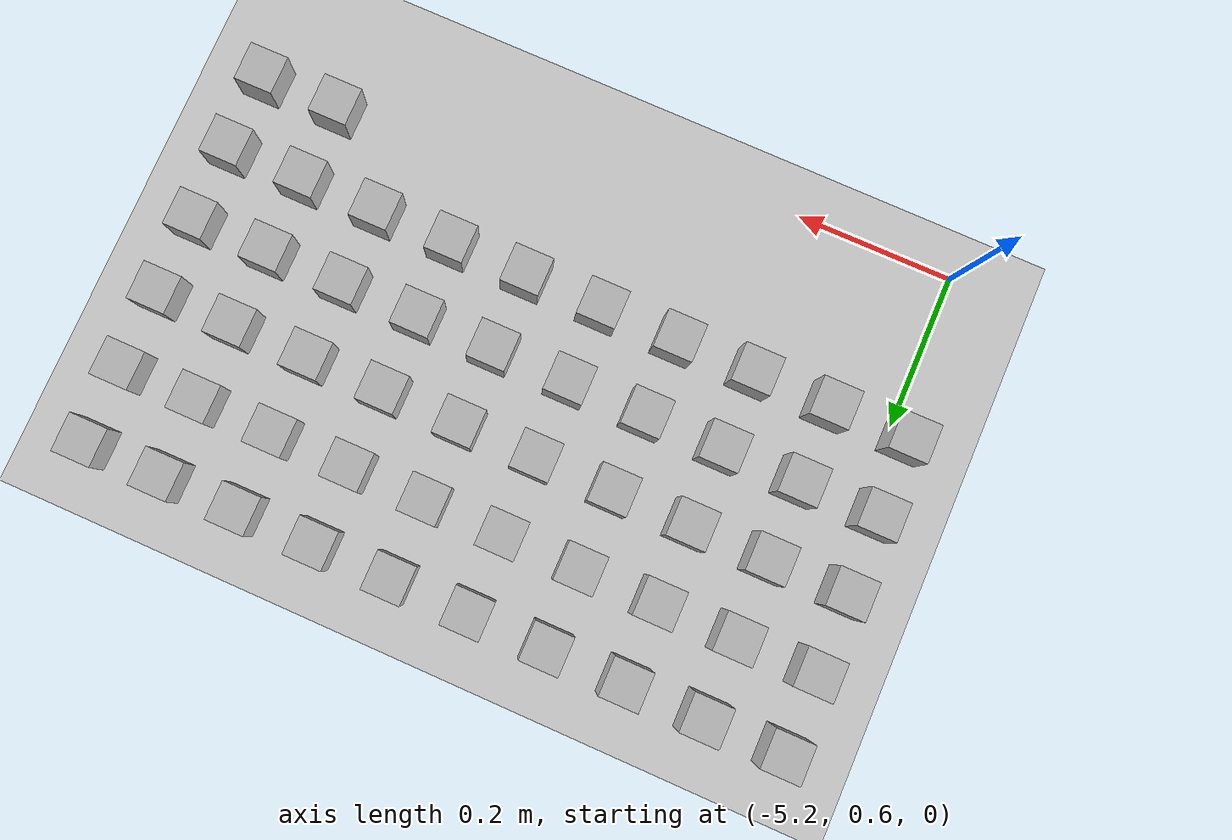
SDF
<sdf version="1.4">
 <world name="default">
  <model name="ground_plane">
   <static>1</static>
   <link name="link">
    <collision name="collision">
     <geometry><plane><normal>0 0 1</normal><size>100 100</size></plane></geometry>
     <surface><friction><ode><mu>100</mu><mu2>50</mu2></ode></friction></surface>
    </collision>
    <visual name="visual">
     <cast_shadows>0</cast_shadows>
     <geometry><plane><normal>0 0 1</normal><size>100 100</size></plane></geometry>
     <material>
      <script><uri>file://media/materials/scripts/gazebo.material</uri><name>Gazebo/Grey</name></script>
     </material>
    </visual>
    <velocity_decay><linear>0</linear><angular>0</angular></velocity_decay>
   </link>
  </model>
  <model name="at174">
   <static>0</static>
   <link name="link">
    <inertial>
     <mass>0.01</mass>
     <inertia><ixx>4e-05</ixx><ixy>0</ixy><ixz>0</ixz><iyy>4e-05</iyy><iyz>0</iyz><izz>4e-05</izz></inertia>
    </inertial>
    <visual name="visual">
     <geometry><box><size>0.05 0.05 0.05</size></box></geometry>
     <material>
      <script>
       <uri>model://at0/materials/scripts</uri>
       <uri>model://at0/materials/textures</uri>
       <name>at0/Diffuse</name>
      </script>
     </material>
    </visual>
    <collision name="collision">
     <geometry><box><size>0.05 0.05 0.05</size></box></geometry>
     <surface><friction><ode><mu>0.8</mu><mu2>0.7</mu2></ode></friction></surface>
    </collision>
    <velocity_decay><linear>0</linear><angular>0</angular></velocity_decay>
   </link>
   <pose>-4.41833 0.709652 0.025 0 -0 0</pose>
  </model>
  <model name="at175">
   <static>0</static>
   <link name="link">
    <inertial>
     <mass>0.01</mass>
     <inertia><ixx>4e-05</ixx><ixy>0</ixy><ixz>0</ixz><iyy>4e-05</iyy><iyz>0</iyz><izz>4e-05</izz></inertia>
    </inertial>
    <visual name="visual">
     <geometry><box><size>0.05 0.05 0.05</size></box></geometry>
     <material>
      <script>
       <uri>model://at0/materials/scripts</uri>
       <uri>model://at0/materials/textures</uri>
       <name>at0/Diffuse</name>
      </script>
     </material>
    </visual>
    <collision name="collision">
     <geometry><box><size>0.05 0.05 0.05</size></box></geometry>
     <surface><friction><ode><mu>0.8</mu><mu2>0.7</mu2></ode></friction></surface>
    </collision>
    <velocity_decay><linear>0</linear><angular>0</angular></velocity_decay>
   </link>
   <pose>-4.31833 0.709652 0.025 0 -0 0</pose>
  </model>
  <model name="at182">
   <static>0</static>
   <link name="link">
    <inertial>
     <mass>0.01</mass>
     <inertia><ixx>4e-05</ixx><ixy>0</ixy><ixz>0</ixz><iyy>4e-05</iyy><iyz>0</iyz><izz>4e-05</izz></inertia>
    </inertial>
    <visual name="visual">
     <geometry><box><size>0.05 0.05 0.05</size></box></geometry>
     <material>
      <script>
       <uri>model://at0/materials/scripts</uri>
       <uri>model://at0/materials/textures</uri>
       <name>at0/Diffuse</name>
      </script>
     </material>
    </visual>
    <collision name="collision">
     <geometry><box><size>0.05 0.05 0.05</size></box></geometry>
     <surface><friction><ode><mu>0.8</mu><mu2>0.7</mu2></ode></friction></surface>
    </collision>
    <velocity_decay><linear>0</linear><angular>0</angular></velocity_decay>
   </link>
   <pose>-5.21833 0.809652 0.025 0 -0 0</pose>
  </model>
  <model name="at183">
   <static>0</static>
   <link name="link">
    <inertial>
     <mass>0.01</mass>
     <inertia><ixx>4e-05</ixx><ixy>0</ixy><ixz>0</ixz><iyy>4e-05</iyy><iyz>0</iyz><izz>4e-05</izz></inertia>
    </inertial>
    <visual name="visual">
     <geometry><box><size>0.05 0.05 0.05</size></box></geometry>
     <material>
      <script>
       <uri>model://at0/materials/scripts</uri>
       <uri>model://at0/materials/textures</uri>
       <name>at0/Diffuse</name>
      </script>
     </material>
    </visual>
    <collision name="collision">
     <geometry><box><size>0.05 0.05 0.05</size></box></geometry>
     <surface><friction><ode><mu>0.8</mu><mu2>0.7</mu2></ode></friction></surface>
    </collision>
    <velocity_decay><linear>0</linear><angular>0</angular></velocity_decay>
   </link>
   <pose>-5.11833 0.809652 0.025 0 -0 0</pose>
  </model>
  <model name="at184">
   <static>0</static>
   <link name="link">
    <inertial>
     <mass>0.01</mass>
     <inertia><ixx>4e-05</ixx><ixy>0</ixy><ixz>0</ixz><iyy>4e-05</iyy><iyz>0</iyz><izz>4e-05</izz></inertia>
    </inertial>
    <visual name="visual">
     <geometry><box><size>0.05 0.05 0.05</size></box></geometry>
     <material>
      <script>
       <uri>model://at0/materials/scripts</uri>
       <uri>model://at0/materials/textures</uri>
       <name>at0/Diffuse</name>
      </script>
     </material>
    </visual>
    <collision name="collision">
     <geometry><box><size>0.05 0.05 0.05</size></box></geometry>
     <surface><friction><ode><mu>0.8</mu><mu2>0.7</mu2></ode></friction></surface>
    </collision>
    <velocity_decay><linear>0</linear><angular>0</angular></velocity_decay>
   </link>
   <pose>-5.01833 0.809652 0.025 0 -0 0</pose>
  </model>
  <model name="at185">
   <static>0</static>
   <link name="link">
    <inertial>
     <mass>0.01</mass>
     <inertia><ixx>4e-05</ixx><ixy>0</ixy><ixz>0</ixz><iyy>4e-05</iyy><iyz>0</iyz><izz>4e-05</izz></inertia>
    </inertial>
    <visual name="visual">
     <geometry><box><size>0.05 0.05 0.05</size></box></geometry>
     <material>
      <script>
       <uri>model://at0/materials/scripts</uri>
       <uri>model://at0/materials/textures</uri>
       <name>at0/Diffuse</name>
      </script>
     </material>
    </visual>
    <collision name="collision">
     <geometry><box><size>0.05 0.05 0.05</size></box></geometry>
     <surface><friction><ode><mu>0.8</mu><mu2>0.7</mu2></ode></friction></surface>
    </collision>
    <velocity_decay><linear>0</linear><angular>0</angular></velocity_decay>
   </link>
   <pose>-4.91833 0.809652 0.025 0 -0 0</pose>
  </model>
  <model name="at186">
   <static>0</static>
   <link name="link">
    <inertial>
     <mass>0.01</mass>
     <inertia><ixx>4e-05</ixx><ixy>0</ixy><ixz>0</ixz><iyy>4e-05</iyy><iyz>0</iyz><izz>4e-05</izz></inertia>
    </inertial>
    <visual name="visual">
     <geometry><box><size>0.05 0.05 0.05</size></box></geometry>
     <material>
      <script>
       <uri>model://at0/materials/scripts</uri>
       <uri>model://at0/materials/textures</uri>
       <name>at0/Diffuse</name>
      </script>
     </material>
    </visual>
    <collision name="collision">
     <geometry><box><size>0.05 0.05 0.05</size></box></geometry>
     <surface><friction><ode><mu>0.8</mu><mu2>0.7</mu2></ode></friction></surface>
    </collision>
    <velocity_decay><linear>0</linear><angular>0</angular></velocity_decay>
   </link>
   <pose>-4.81833 0.809652 0.025 0 -0 0</pose>
  </model>
  <model name="at187">
   <static>0</static>
   <link name="link">
    <inertial>
     <mass>0.01</mass>
     <inertia><ixx>4e-05</ixx><ixy>0</ixy><ixz>0</ixz><iyy>4e-05</iyy><iyz>0</iyz><izz>4e-05</izz></inertia>
    </inertial>
    <visual name="visual">
     <geometry><box><size>0.05 0.05 0.05</size></box></geometry>
     <material>
      <script>
       <uri>model://at0/materials/scripts</uri>
       <uri>model://at0/materials/textures</uri>
       <name>at0/Diffuse</name>
      </script>
     </material>
    </visual>
    <collision name="collision">
     <geometry><box><size>0.05 0.05 0.05</size></box></geometry>
     <surface><friction><ode><mu>0.8</mu><mu2>0.7</mu2></ode></friction></surface>
    </collision>
    <velocity_decay><linear>0</linear><angular>0</angular></velocity_decay>
   </link>
   <pose>-4.71833 0.809652 0.025 0 -0 0</pose>
  </model>
  <model name="at188">
   <static>0</static>
   <link name="link">
    <inertial>
     <mass>0.01</mass>
     <inertia><ixx>4e-05</ixx><ixy>0</ixy><ixz>0</ixz><iyy>4e-05</iyy><iyz>0</iyz><izz>4e-05</izz></inertia>
    </inertial>
    <visual name="visual">
     <geometry><box><size>0.05 0.05 0.05</size></box></geometry>
     <material>
      <script>
       <uri>model://at0/materials/scripts</uri>
       <uri>model://at0/materials/textures</uri>
       <name>at0/Diffuse</name>
      </script>
     </material>
    </visual>
    <collision name="collision">
     <geometry><box><size>0.05 0.05 0.05</size></box></geometry>
     <surface><friction><ode><mu>0.8</mu><mu2>0.7</mu2></ode></friction></surface>
    </collision>
    <velocity_decay><linear>0</linear><angular>0</angular></velocity_decay>
   </link>
   <pose>-4.61833 0.809652 0.025 0 -0 0</pose>
  </model>
  <model name="at189">
   <static>0</static>
   <link name="link">
    <inertial>
     <mass>0.01</mass>
     <inertia><ixx>4e-05</ixx><ixy>0</ixy><ixz>0</ixz><iyy>4e-05</iyy><iyz>0</iyz><izz>4e-05</izz></inertia>
    </inertial>
    <visual name="visual">
     <geometry><box><size>0.05 0.05 0.05</size></box></geometry>
     <material>
      <script>
       <uri>model://at0/materials/scripts</uri>
       <uri>model://at0/materials/textures</uri>
       <name>at0/Diffuse</name>
      </script>
     </material>
    </visual>
    <collision name="collision">
     <geometry><box><size>0.05 0.05 0.05</size></box></geometry>
     <surface><friction><ode><mu>0.8</mu><mu2>0.7</mu2></ode></friction></surface>
    </collision>
    <velocity_decay><linear>0</linear><angular>0</angular></velocity_decay>
   </link>
   <pose>-4.51833 0.809652 0.025 0 -0 0</pose>
  </model>
  <model name="at190">
   <static>0</static>
   <link name="link">
    <inertial>
     <mass>0.01</mass>
     <inertia><ixx>4e-05</ixx><ixy>0</ixy><ixz>0</ixz><iyy>4e-05</iyy><iyz>0</iyz><izz>4e-05</izz></inertia>
    </inertial>
    <visual name="visual">
     <geometry><box><size>0.05 0.05 0.05</size></box></geometry>
     <material>
      <script>
       <uri>model://at0/materials/scripts</uri>
       <uri>model://at0/materials/textures</uri>
       <name>at0/Diffuse</name>
      </script>
     </material>
    </visual>
    <collision name="collision">
     <geometry><box><size>0.05 0.05 0.05</size></box></geometry>
     <surface><friction><ode><mu>0.8</mu><mu2>0.7</mu2></ode></friction></surface>
    </collision>
    <velocity_decay><linear>0</linear><angular>0</angular></velocity_decay>
   </link>
   <pose>-4.41833 0.809652 0.025 0 -0 0</pose>
  </model>
  <model name="at191">
   <static>0</static>
   <link name="link">
    <inertial>
     <mass>0.01</mass>
     <inertia><ixx>4e-05</ixx><ixy>0</ixy><ixz>0</ixz><iyy>4e-05</iyy><iyz>0</iyz><izz>4e-05</izz></inertia>
    </inertial>
    <visual name="visual">
     <geometry><box><size>0.05 0.05 0.05</size></box></geometry>
     <material>
      <script>
       <uri>model://at0/materials/scripts</uri>
       <uri>model://at0/materials/textures</uri>
       <name>at0/Diffuse</name>
      </script>
     </material>
    </visual>
    <collision name="collision">
     <geometry><box><size>0.05 0.05 0.05</size></box></geometry>
     <surface><friction><ode><mu>0.8</mu><mu2>0.7</mu2></ode></friction></surface>
    </collision>
    <velocity_decay><linear>0</linear><angular>0</angular></velocity_decay>
   </link>
   <pose>-4.31833 0.809652 0.025 0 -0 0</pose>
  </model>
  <model name="at198">
   <static>0</static>
   <link name="link">
    <inertial>
     <mass>0.01</mass>
     <inertia><ixx>4e-05</ixx><ixy>0</ixy><ixz>0</ixz><iyy>4e-05</iyy><iyz>0</iyz><izz>4e-05</izz></inertia>
    </inertial>
    <visual name="visual">
     <geometry><box><size>0.05 0.05 0.05</size></box></geometry>
     <material>
      <script>
       <uri>model://at0/materials/scripts</uri>
       <uri>model://at0/materials/textures</uri>
       <name>at0/Diffuse</name>
      </script>
     </material>
    </visual>
    <collision name="collision">
     <geometry><box><size>0.05 0.05 0.05</size></box></geometry>
     <surface><friction><ode><mu>0.8</mu><mu2>0.7</mu2></ode></friction></surface>
    </collision>
    <velocity_decay><linear>0</linear><angular>0</angular></velocity_decay>
   </link>
   <pose>-5.21833 0.909652 0.025 0 -0 0</pose>
  </model>
  <model name="at199">
   <static>0</static>
   <link name="link">
    <inertial>
     <mass>0.01</mass>
     <inertia><ixx>4e-05</ixx><ixy>0</ixy><ixz>0</ixz><iyy>4e-05</iyy><iyz>0</iyz><izz>4e-05</izz></inertia>
    </inertial>
    <visual name="visual">
     <geometry><box><size>0.05 0.05 0.05</size></box></geometry>
     <material>
      <script>
       <uri>model://at0/materials/scripts</uri>
       <uri>model://at0/materials/textures</uri>
       <name>at0/Diffuse</name>
      </script>
     </material>
    </visual>
    <collision name="collision">
     <geometry><box><size>0.05 0.05 0.05</size></box></geometry>
     <surface><friction><ode><mu>0.8</mu><mu2>0.7</mu2></ode></friction></surface>
    </collision>
    <velocity_decay><linear>0</linear><angular>0</angular></velocity_decay>
   </link>
   <pose>-5.11833 0.909652 0.025 0 -0 0</pose>
  </model>
  <model name="at200">
   <static>0</static>
   <link name="link">
    <inertial>
     <mass>0.01</mass>
     <inertia><ixx>4e-05</ixx><ixy>0</ixy><ixz>0</ixz><iyy>4e-05</iyy><iyz>0</iyz><izz>4e-05</izz></inertia>
    </inertial>
    <visual name="visual">
     <geometry><box><size>0.05 0.05 0.05</size></box></geometry>
     <material>
      <script>
       <uri>model://at0/materials/scripts</uri>
       <uri>model://at0/materials/textures</uri>
       <name>at0/Diffuse</name>
      </script>
     </material>
    </visual>
    <collision name="collision">
     <geometry><box><size>0.05 0.05 0.05</size></box></geometry>
     <surface><friction><ode><mu>0.8</mu><mu2>0.7</mu2></ode></friction></surface>
    </collision>
    <velocity_decay><linear>0</linear><angular>0</angular></velocity_decay>
   </link>
   <pose>-5.01833 0.909652 0.025 0 -0 0</pose>
  </model>
  <model name="at201">
   <static>0</static>
   <link name="link">
    <inertial>
     <mass>0.01</mass>
     <inertia><ixx>4e-05</ixx><ixy>0</ixy><ixz>0</ixz><iyy>4e-05</iyy><iyz>0</iyz><izz>4e-05</izz></inertia>
    </inertial>
    <visual name="visual">
     <geometry><box><size>0.05 0.05 0.05</size></box></geometry>
     <material>
      <script>
       <uri>model://at0/materials/scripts</uri>
       <uri>model://at0/materials/textures</uri>
       <name>at0/Diffuse</name>
      </script>
     </material>
    </visual>
    <collision name="collision">
     <geometry><box><size>0.05 0.05 0.05</size></box></geometry>
     <surface><friction><ode><mu>0.8</mu><mu2>0.7</mu2></ode></friction></surface>
    </collision>
    <velocity_decay><linear>0</linear><angular>0</angular></velocity_decay>
   </link>
   <pose>-4.91833 0.909652 0.025 0 -0 0</pose>
  </model>
  <model name="at202">
   <static>0</static>
   <link name="link">
    <inertial>
     <mass>0.01</mass>
     <inertia><ixx>4e-05</ixx><ixy>0</ixy><ixz>0</ixz><iyy>4e-05</iyy><iyz>0</iyz><izz>4e-05</izz></inertia>
    </inertial>
    <visual name="visual">
     <geometry><box><size>0.05 0.05 0.05</size></box></geometry>
     <material>
      <script>
       <uri>model://at0/materials/scripts</uri>
       <uri>model://at0/materials/textures</uri>
       <name>at0/Diffuse</name>
      </script>
     </material>
    </visual>
    <collision name="collision">
     <geometry><box><size>0.05 0.05 0.05</size></box></geometry>
     <surface><friction><ode><mu>0.8</mu><mu2>0.7</mu2></ode></friction></surface>
    </collision>
    <velocity_decay><linear>0</linear><angular>0</angular></velocity_decay>
   </link>
   <pose>-4.81833 0.909652 0.025 0 -0 0</pose>
  </model>
  <model name="at203">
   <static>0</static>
   <link name="link">
    <inertial>
     <mass>0.01</mass>
     <inertia><ixx>4e-05</ixx><ixy>0</ixy><ixz>0</ixz><iyy>4e-05</iyy><iyz>0</iyz><izz>4e-05</izz></inertia>
    </inertial>
    <visual name="visual">
     <geometry><box><size>0.05 0.05 0.05</size></box></geometry>
     <material>
      <script>
       <uri>model://at0/materials/scripts</uri>
       <uri>model://at0/materials/textures</uri>
       <name>at0/Diffuse</name>
      </script>
     </material>
    </visual>
    <collision name="collision">
     <geometry><box><size>0.05 0.05 0.05</size></box></geometry>
     <surface><friction><ode><mu>0.8</mu><mu2>0.7</mu2></ode></friction></surface>
    </collision>
    <velocity_decay><linear>0</linear><angular>0</angular></velocity_decay>
   </link>
   <pose>-4.71833 0.909652 0.025 0 -0 0</pose>
  </model>
  <model name="at204">
   <static>0</static>
   <link name="link">
    <inertial>
     <mass>0.01</mass>
     <inertia><ixx>4e-05</ixx><ixy>0</ixy><ixz>0</ixz><iyy>4e-05</iyy><iyz>0</iyz><izz>4e-05</izz></inertia>
    </inertial>
    <visual name="visual">
     <geometry><box><size>0.05 0.05 0.05</size></box></geometry>
     <material>
      <script>
       <uri>model://at0/materials/scripts</uri>
       <uri>model://at0/materials/textures</uri>
       <name>at0/Diffuse</name>
      </script>
     </material>
    </visual>
    <collision name="collision">
     <geometry><box><size>0.05 0.05 0.05</size></box></geometry>
     <surface><friction><ode><mu>0.8</mu><mu2>0.7</mu2></ode></friction></surface>
    </collision>
    <velocity_decay><linear>0</linear><angular>0</angular></velocity_decay>
   </link>
   <pose>-4.61833 0.909652 0.025 0 -0 0</pose>
  </model>
  <model name="at205">
   <static>0</static>
   <link name="link">
    <inertial>
     <mass>0.01</mass>
     <inertia><ixx>4e-05</ixx><ixy>0</ixy><ixz>0</ixz><iyy>4e-05</iyy><iyz>0</iyz><izz>4e-05</izz></inertia>
    </inertial>
    <visual name="visual">
     <geometry><box><size>0.05 0.05 0.05</size></box></geometry>
     <material>
      <script>
       <uri>model://at0/materials/scripts</uri>
       <uri>model://at0/materials/textures</uri>
       <name>at0/Diffuse</name>
      </script>
     </material>
    </visual>
    <collision name="collision">
     <geometry><box><size>0.05 0.05 0.05</size></box></geometry>
     <surface><friction><ode><mu>0.8</mu><mu2>0.7</mu2></ode></friction></surface>
    </collision>
    <velocity_decay><linear>0</linear><angular>0</angular></velocity_decay>
   </link>
   <pose>-4.51833 0.909652 0.025 0 -0 0</pose>
  </model>
  <model name="at206">
   <static>0</static>
   <link name="link">
    <inertial>
     <mass>0.01</mass>
     <inertia><ixx>4e-05</ixx><ixy>0</ixy><ixz>0</ixz><iyy>4e-05</iyy><iyz>0</iyz><izz>4e-05</izz></inertia>
    </inertial>
    <visual name="visual">
     <geometry><box><size>0.05 0.05 0.05</size></box></geometry>
     <material>
      <script>
       <uri>model://at0/materials/scripts</uri>
       <uri>model://at0/materials/textures</uri>
       <name>at0/Diffuse</name>
      </script>
     </material>
    </visual>
    <collision name="collision">
     <geometry><box><size>0.05 0.05 0.05</size></box></geometry>
     <surface><friction><ode><mu>0.8</mu><mu2>0.7</mu2></ode></friction></surface>
    </collision>
    <velocity_decay><linear>0</linear><angular>0</angular></velocity_decay>
   </link>
   <pose>-4.41833 0.909652 0.025 0 -0 0</pose>
  </model>
  <model name="at207">
   <static>0</static>
   <link name="link">
    <inertial>
     <mass>0.01</mass>
     <inertia><ixx>4e-05</ixx><ixy>0</ixy><ixz>0</ixz><iyy>4e-05</iyy><iyz>0</iyz><izz>4e-05</izz></inertia>
    </inertial>
    <visual name="visual">
     <geometry><box><size>0.05 0.05 0.05</size></box></geometry>
     <material>
      <script>
       <uri>model://at0/materials/scripts</uri>
       <uri>model://at0/materials/textures</uri>
       <name>at0/Diffuse</name>
      </script>
     </material>
    </visual>
    <collision name="collision">
     <geometry><box><size>0.05 0.05 0.05</size></box></geometry>
     <surface><friction><ode><mu>0.8</mu><mu2>0.7</mu2></ode></friction></surface>
    </collision>
    <velocity_decay><linear>0</linear><angular>0</angular></velocity_decay>
   </link>
   <pose>-4.31833 0.909652 0.025 0 -0 0</pose>
  </model>
  <model name="at214">
   <static>0</static>
   <link name="link">
    <inertial>
     <mass>0.01</mass>
     <inertia><ixx>4e-05</ixx><ixy>0</ixy><ixz>0</ixz><iyy>4e-05</iyy><iyz>0</iyz><izz>4e-05</izz></inertia>
    </inertial>
    <visual name="visual">
     <geometry><box><size>0.05 0.05 0.05</size></box></geometry>
     <material>
      <script>
       <uri>model://at0/materials/scripts</uri>
       <uri>model://at0/materials/textures</uri>
       <name>at0/Diffuse</name>
      </script>
     </material>
    </visual>
    <collision name="collision">
     <geometry><box><size>0.05 0.05 0.05</size></box></geometry>
     <surface><friction><ode><mu>0.8</mu><mu2>0.7</mu2></ode></friction></surface>
    </collision>
    <velocity_decay><linear>0</linear><angular>0</angular></velocity_decay>
   </link>
   <pose>-5.21833 1.00965 0.025 0 -0 0</pose>
  </model>
  <model name="at215">
   <static>0</static>
   <link name="link">
    <inertial>
     <mass>0.01</mass>
     <inertia><ixx>4e-05</ixx><ixy>0</ixy><ixz>0</ixz><iyy>4e-05</iyy><iyz>0</iyz><izz>4e-05</izz></inertia>
    </inertial>
    <visual name="visual">
     <geometry><box><size>0.05 0.05 0.05</size></box></geometry>
     <material>
      <script>
       <uri>model://at0/materials/scripts</uri>
       <uri>model://at0/materials/textures</uri>
       <name>at0/Diffuse</name>
      </script>
     </material>
    </visual>
    <collision name="collision">
     <geometry><box><size>0.05 0.05 0.05</size></box></geometry>
     <surface><friction><ode><mu>0.8</mu><mu2>0.7</mu2></ode></friction></surface>
    </collision>
    <velocity_decay><linear>0</linear><angular>0</angular></velocity_decay>
   </link>
   <pose>-5.11833 1.00965 0.025 0 -0 0</pose>
  </model>
  <model name="at216">
   <static>0</static>
   <link name="link">
    <inertial>
     <mass>0.01</mass>
     <inertia><ixx>4e-05</ixx><ixy>0</ixy><ixz>0</ixz><iyy>4e-05</iyy><iyz>0</iyz><izz>4e-05</izz></inertia>
    </inertial>
    <visual name="visual">
     <geometry><box><size>0.05 0.05 0.05</size></box></geometry>
     <material>
      <script>
       <uri>model://at0/materials/scripts</uri>
       <uri>model://at0/materials/textures</uri>
       <name>at0/Diffuse</name>
      </script>
     </material>
    </visual>
    <collision name="collision">
     <geometry><box><size>0.05 0.05 0.05</size></box></geometry>
     <surface><friction><ode><mu>0.8</mu><mu2>0.7</mu2></ode></friction></surface>
    </collision>
    <velocity_decay><linear>0</linear><angular>0</angular></velocity_decay>
   </link>
   <pose>-5.01833 1.00965 0.025 0 -0 0</pose>
  </model>
  <model name="at217">
   <static>0</static>
   <link name="link">
    <inertial>
     <mass>0.01</mass>
     <inertia><ixx>4e-05</ixx><ixy>0</ixy><ixz>0</ixz><iyy>4e-05</iyy><iyz>0</iyz><izz>4e-05</izz></inertia>
    </inertial>
    <visual name="visual">
     <geometry><box><size>0.05 0.05 0.05</size></box></geometry>
     <material>
      <script>
       <uri>model://at0/materials/scripts</uri>
       <uri>model://at0/materials/textures</uri>
       <name>at0/Diffuse</name>
      </script>
     </material>
    </visual>
    <collision name="collision">
     <geometry><box><size>0.05 0.05 0.05</size></box></geometry>
     <surface><friction><ode><mu>0.8</mu><mu2>0.7</mu2></ode></friction></surface>
    </collision>
    <velocity_decay><linear>0</linear><angular>0</angular></velocity_decay>
   </link>
   <pose>-4.91833 1.00965 0.025 0 -0 0</pose>
  </model>
  <model name="at218">
   <static>0</static>
   <link name="link">
    <inertial>
     <mass>0.01</mass>
     <inertia><ixx>4e-05</ixx><ixy>0</ixy><ixz>0</ixz><iyy>4e-05</iyy><iyz>0</iyz><izz>4e-05</izz></inertia>
    </inertial>
    <visual name="visual">
     <geometry><box><size>0.05 0.05 0.05</size></box></geometry>
     <material>
      <script>
       <uri>model://at0/materials/scripts</uri>
       <uri>model://at0/materials/textures</uri>
       <name>at0/Diffuse</name>
      </script>
     </material>
    </visual>
    <collision name="collision">
     <geometry><box><size>0.05 0.05 0.05</size></box></geometry>
     <surface><friction><ode><mu>0.8</mu><mu2>0.7</mu2></ode></friction></surface>
    </collision>
    <velocity_decay><linear>0</linear><angular>0</angular></velocity_decay>
   </link>
   <pose>-4.81833 1.00965 0.025 0 -0 0</pose>
  </model>
  <model name="at219">
   <static>0</static>
   <link name="link">
    <inertial>
     <mass>0.01</mass>
     <inertia><ixx>4e-05</ixx><ixy>0</ixy><ixz>0</ixz><iyy>4e-05</iyy><iyz>0</iyz><izz>4e-05</izz></inertia>
    </inertial>
    <visual name="visual">
     <geometry><box><size>0.05 0.05 0.05</size></box></geometry>
     <material>
      <script>
       <uri>model://at0/materials/scripts</uri>
       <uri>model://at0/materials/textures</uri>
       <name>at0/Diffuse</name>
      </script>
     </material>
    </visual>
    <collision name="collision">
     <geometry><box><size>0.05 0.05 0.05</size></box></geometry>
     <surface><friction><ode><mu>0.8</mu><mu2>0.7</mu2></ode></friction></surface>
    </collision>
    <velocity_decay><linear>0</linear><angular>0</angular></velocity_decay>
   </link>
   <pose>-4.71833 1.00965 0.025 0 -0 0</pose>
  </model>
  <model name="at220">
   <static>0</static>
   <link name="link">
    <inertial>
     <mass>0.01</mass>
     <inertia><ixx>4e-05</ixx><ixy>0</ixy><ixz>0</ixz><iyy>4e-05</iyy><iyz>0</iyz><izz>4e-05</izz></inertia>
    </inertial>
    <visual name="visual">
     <geometry><box><size>0.05 0.05 0.05</size></box></geometry>
     <material>
      <script>
       <uri>model://at0/materials/scripts</uri>
       <uri>model://at0/materials/textures</uri>
       <name>at0/Diffuse</name>
      </script>
     </material>
    </visual>
    <collision name="collision">
     <geometry><box><size>0.05 0.05 0.05</size></box></geometry>
     <surface><friction><ode><mu>0.8</mu><mu2>0.7</mu2></ode></friction></surface>
    </collision>
    <velocity_decay><linear>0</linear><angular>0</angular></velocity_decay>
   </link>
   <pose>-4.61833 1.00965 0.025 0 -0 0</pose>
  </model>
  <model name="at221">
   <static>0</static>
   <link name="link">
    <inertial>
     <mass>0.01</mass>
     <inertia><ixx>4e-05</ixx><ixy>0</ixy><ixz>0</ixz><iyy>4e-05</iyy><iyz>0</iyz><izz>4e-05</izz></inertia>
    </inertial>
    <visual name="visual">
     <geometry><box><size>0.05 0.05 0.05</size></box></geometry>
     <material>
      <script>
       <uri>model://at0/materials/scripts</uri>
       <uri>model://at0/materials/textures</uri>
       <name>at0/Diffuse</name>
      </script>
     </material>
    </visual>
    <collision name="collision">
     <geometry><box><size>0.05 0.05 0.05</size></box></geometry>
     <surface><friction><ode><mu>0.8</mu><mu2>0.7</mu2></ode></friction></surface>
    </collision>
    <velocity_decay><linear>0</linear><angular>0</angular></velocity_decay>
   </link>
   <pose>-4.51833 1.00965 0.025 0 -0 0</pose>
  </model>
  <model name="at222">
   <static>0</static>
   <link name="link">
    <inertial>
     <mass>0.01</mass>
     <inertia><ixx>4e-05</ixx><ixy>0</ixy><ixz>0</ixz><iyy>4e-05</iyy><iyz>0</iyz><izz>4e-05</izz></inertia>
    </inertial>
    <visual name="visual">
     <geometry><box><size>0.05 0.05 0.05</size></box></geometry>
     <material>
      <script>
       <uri>model://at0/materials/scripts</uri>
       <uri>model://at0/materials/textures</uri>
       <name>at0/Diffuse</name>
      </script>
     </material>
    </visual>
    <collision name="collision">
     <geometry><box><size>0.05 0.05 0.05</size></box></geometry>
     <surface><friction><ode><mu>0.8</mu><mu2>0.7</mu2></ode></friction></surface>
    </collision>
    <velocity_decay><linear>0</linear><angular>0</angular></velocity_decay>
   </link>
   <pose>-4.41833 1.00965 0.025 0 -0 0</pose>
  </model>
  <model name="at223">
   <static>0</static>
   <link name="link">
    <inertial>
     <mass>0.01</mass>
     <inertia><ixx>4e-05</ixx><ixy>0</ixy><ixz>0</ixz><iyy>4e-05</iyy><iyz>0</iyz><izz>4e-05</izz></inertia>
    </inertial>
    <visual name="visual">
     <geometry><box><size>0.05 0.05 0.05</size></box></geometry>
     <material>
      <script>
       <uri>model://at0/materials/scripts</uri>
       <uri>model://at0/materials/textures</uri>
       <name>at0/Diffuse</name>
      </script>
     </material>
    </visual>
    <collision name="collision">
     <geometry><box><size>0.05 0.05 0.05</size></box></geometry>
     <surface><friction><ode><mu>0.8</mu><mu2>0.7</mu2></ode></friction></surface>
    </collision>
    <velocity_decay><linear>0</linear><angular>0</angular></velocity_decay>
   </link>
   <pose>-4.31833 1.00965 0.025 0 -0 0</pose>
  </model>
  <model name="at230">
   <static>0</static>
   <link name="link">
    <inertial>
     <mass>0.01</mass>
     <inertia><ixx>4e-05</ixx><ixy>0</ixy><ixz>0</ixz><iyy>4e-05</iyy><iyz>0</iyz><izz>4e-05</izz></inertia>
    </inertial>
    <visual name="visual">
     <geometry><box><size>0.05 0.05 0.05</size></box></geometry>
     <material>
      <script>
       <uri>model://at0/materials/scripts</uri>
       <uri>model://at0/materials/textures</uri>
       <name>at0/Diffuse</name>
      </script>
     </material>
    </visual>
    <collision name="collision">
     <geometry><box><size>0.05 0.05 0.05</size></box></geometry>
     <surface><friction><ode><mu>0.8</mu><mu2>0.7</mu2></ode></friction></surface>
    </collision>
    <velocity_decay><linear>0</linear><angular>0</angular></velocity_decay>
   </link>
   <pose>-5.21833 1.10965 0.025 0 -0 0</pose>
  </model>
  <model name="at231">
   <static>0</static>
   <link name="link">
    <inertial>
     <mass>0.01</mass>
     <inertia><ixx>4e-05</ixx><ixy>0</ixy><ixz>0</ixz><iyy>4e-05</iyy><iyz>0</iyz><izz>4e-05</izz></inertia>
    </inertial>
    <visual name="visual">
     <geometry><box><size>0.05 0.05 0.05</size></box></geometry>
     <material>
      <script>
       <uri>model://at0/materials/scripts</uri>
       <uri>model://at0/materials/textures</uri>
       <name>at0/Diffuse</name>
      </script>
     </material>
    </visual>
    <collision name="collision">
     <geometry><box><size>0.05 0.05 0.05</size></box></geometry>
     <surface><friction><ode><mu>0.8</mu><mu2>0.7</mu2></ode></friction></surface>
    </collision>
    <velocity_decay><linear>0</linear><angular>0</angular></velocity_decay>
   </link>
   <pose>-5.11833 1.10965 0.025 0 -0 0</pose>
  </model>
  <model name="at232">
   <static>0</static>
   <link name="link">
    <inertial>
     <mass>0.01</mass>
     <inertia><ixx>4e-05</ixx><ixy>0</ixy><ixz>0</ixz><iyy>4e-05</iyy><iyz>0</iyz><izz>4e-05</izz></inertia>
    </inertial>
    <visual name="visual">
     <geometry><box><size>0.05 0.05 0.05</size></box></geometry>
     <material>
      <script>
       <uri>model://at0/materials/scripts</uri>
       <uri>model://at0/materials/textures</uri>
       <name>at0/Diffuse</name>
      </script>
     </material>
    </visual>
    <collision name="collision">
     <geometry><box><size>0.05 0.05 0.05</size></box></geometry>
     <surface><friction><ode><mu>0.8</mu><mu2>0.7</mu2></ode></friction></surface>
    </collision>
    <velocity_decay><linear>0</linear><angular>0</angular></velocity_decay>
   </link>
   <pose>-5.01833 1.10965 0.025 0 -0 0</pose>
  </model>
  <model name="at233">
   <static>0</static>
   <link name="link">
    <inertial>
     <mass>0.01</mass>
     <inertia><ixx>4e-05</ixx><ixy>0</ixy><ixz>0</ixz><iyy>4e-05</iyy><iyz>0</iyz><izz>4e-05</izz></inertia>
    </inertial>
    <visual name="visual">
     <geometry><box><size>0.05 0.05 0.05</size></box></geometry>
     <material>
      <script>
       <uri>model://at0/materials/scripts</uri>
       <uri>model://at0/materials/textures</uri>
       <name>at0/Diffuse</name>
      </script>
     </material>
    </visual>
    <collision name="collision">
     <geometry><box><size>0.05 0.05 0.05</size></box></geometry>
     <surface><friction><ode><mu>0.8</mu><mu2>0.7</mu2></ode></friction></surface>
    </collision>
    <velocity_decay><linear>0</linear><angular>0</angular></velocity_decay>
   </link>
   <pose>-4.91833 1.10965 0.025 0 -0 0</pose>
  </model>
  <model name="at234">
   <static>0</static>
   <link name="link">
    <inertial>
     <mass>0.01</mass>
     <inertia><ixx>4e-05</ixx><ixy>0</ixy><ixz>0</ixz><iyy>4e-05</iyy><iyz>0</iyz><izz>4e-05</izz></inertia>
    </inertial>
    <visual name="visual">
     <geometry><box><size>0.05 0.05 0.05</size></box></geometry>
     <material>
      <script>
       <uri>model://at0/materials/scripts</uri>
       <uri>model://at0/materials/textures</uri>
       <name>at0/Diffuse</name>
      </script>
     </material>
    </visual>
    <collision name="collision">
     <geometry><box><size>0.05 0.05 0.05</size></box></geometry>
     <surface><friction><ode><mu>0.8</mu><mu2>0.7</mu2></ode></friction></surface>
    </collision>
    <velocity_decay><linear>0</linear><angular>0</angular></velocity_decay>
   </link>
   <pose>-4.81833 1.10965 0.025 0 -0 0</pose>
  </model>
  <model name="at235">
   <static>0</static>
   <link name="link">
    <inertial>
     <mass>0.01</mass>
     <inertia><ixx>4e-05</ixx><ixy>0</ixy><ixz>0</ixz><iyy>4e-05</iyy><iyz>0</iyz><izz>4e-05</izz></inertia>
    </inertial>
    <visual name="visual">
     <geometry><box><size>0.05 0.05 0.05</size></box></geometry>
     <material>
      <script>
       <uri>model://at0/materials/scripts</uri>
       <uri>model://at0/materials/textures</uri>
       <name>at0/Diffuse</name>
      </script>
     </material>
    </visual>
    <collision name="collision">
     <geometry><box><size>0.05 0.05 0.05</size></box></geometry>
     <surface><friction><ode><mu>0.8</mu><mu2>0.7</mu2></ode></friction></surface>
    </collision>
    <velocity_decay><linear>0</linear><angular>0</angular></velocity_decay>
   </link>
   <pose>-4.71833 1.10965 0.025 0 -0 0</pose>
  </model>
  <model name="at236">
   <static>0</static>
   <link name="link">
    <inertial>
     <mass>0.01</mass>
     <inertia><ixx>4e-05</ixx><ixy>0</ixy><ixz>0</ixz><iyy>4e-05</iyy><iyz>0</iyz><izz>4e-05</izz></inertia>
    </inertial>
    <visual name="visual">
     <geometry><box><size>0.05 0.05 0.05</size></box></geometry>
     <material>
      <script>
       <uri>model://at0/materials/scripts</uri>
       <uri>model://at0/materials/textures</uri>
       <name>at0/Diffuse</name>
      </script>
     </material>
    </visual>
    <collision name="collision">
     <geometry><box><size>0.05 0.05 0.05</size></box></geometry>
     <surface><friction><ode><mu>0.8</mu><mu2>0.7</mu2></ode></friction></surface>
    </collision>
    <velocity_decay><linear>0</linear><angular>0</angular></velocity_decay>
   </link>
   <pose>-4.61833 1.10965 0.025 0 -0 0</pose>
  </model>
  <model name="at237">
   <static>0</static>
   <link name="link">
    <inertial>
     <mass>0.01</mass>
     <inertia><ixx>4e-05</ixx><ixy>0</ixy><ixz>0</ixz><iyy>4e-05</iyy><iyz>0</iyz><izz>4e-05</izz></inertia>
    </inertial>
    <visual name="visual">
     <geometry><box><size>0.05 0.05 0.05</size></box></geometry>
     <material>
      <script>
       <uri>model://at0/materials/scripts</uri>
       <uri>model://at0/materials/textures</uri>
       <name>at0/Diffuse</name>
      </script>
     </material>
    </visual>
    <collision name="collision">
     <geometry><box><size>0.05 0.05 0.05</size></box></geometry>
     <surface><friction><ode><mu>0.8</mu><mu2>0.7</mu2></ode></friction></surface>
    </collision>
    <velocity_decay><linear>0</linear><angular>0</angular></velocity_decay>
   </link>
   <pose>-4.51833 1.10965 0.025 0 -0 0</pose>
  </model>
  <model name="at238">
   <static>0</static>
   <link name="link">
    <inertial>
     <mass>0.01</mass>
     <inertia><ixx>4e-05</ixx><ixy>0</ixy><ixz>0</ixz><iyy>4e-05</iyy><iyz>0</iyz><izz>4e-05</izz></inertia>
    </inertial>
    <visual name="visual">
     <geometry><box><size>0.05 0.05 0.05</size></box></geometry>
     <material>
      <script>
       <uri>model://at0/materials/scripts</uri>
       <uri>model://at0/materials/textures</uri>
       <name>at0/Diffuse</name>
      </script>
     </material>
    </visual>
    <collision name="collision">
     <geometry><box><size>0.05 0.05 0.05</size></box></geometry>
     <surface><friction><ode><mu>0.8</mu><mu2>0.7</mu2></ode></friction></surface>
    </collision>
    <velocity_decay><linear>0</linear><angular>0</angular></velocity_decay>
   </link>
   <pose>-4.41833 1.10965 0.025 0 -0 0</pose>
  </model>
  <model name="at239">
   <static>0</static>
   <link name="link">
    <inertial>
     <mass>0.01</mass>
     <inertia><ixx>4e-05</ixx><ixy>0</ixy><ixz>0</ixz><iyy>4e-05</iyy><iyz>0</iyz><izz>4e-05</izz></inertia>
    </inertial>
    <visual name="visual">
     <geometry><box><size>0.05 0.05 0.05</size></box></geometry>
     <material>
      <script>
       <uri>model://at0/materials/scripts</uri>
       <uri>model://at0/materials/textures</uri>
       <name>at0/Diffuse</name>
      </script>
     </material>
    </visual>
    <collision name="collision">
     <geometry><box><size>0.05 0.05 0.05</size></box></geometry>
     <surface><friction><ode><mu>0.8</mu><mu2>0.7</mu2></ode></friction></surface>
    </collision>
    <velocity_decay><linear>0</linear><angular>0</angular></velocity_decay>
   </link>
   <pose>-4.31833 1.10965 0.025 0 -0 0</pose>
  </model>
  <model name="at246">
   <static>0</static>
   <link name="link">
    <inertial>
     <mass>0.01</mass>
     <inertia><ixx>4e-05</ixx><ixy>0</ixy><ixz>0</ixz><iyy>4e-05</iyy><iyz>0</iyz><izz>4e-05</izz></inertia>
    </inertial>
    <visual name="visual">
     <geometry><box><size>0.05 0.05 0.05</size></box></geometry>
     <material>
      <script>
       <uri>model://at0/materials/scripts</uri>
       <uri>model://at0/materials/textures</uri>
       <name>at0/Diffuse</name>
      </script>
     </material>
    </visual>
    <collision name="collision">
     <geometry><box><size>0.05 0.05 0.05</size></box></geometry>
     <surface><friction><ode><mu>0.8</mu><mu2>0.7</mu2></ode></friction></surface>
    </collision>
    <velocity_decay><linear>0</linear><angular>0</angular></velocity_decay>
   </link>
   <pose>-5.21833 1.20965 0.025 0 -0 0</pose>
  </model>
  <model name="at247">
   <static>0</static>
   <link name="link">
    <inertial>
     <mass>0.01</mass>
     <inertia><ixx>4e-05</ixx><ixy>0</ixy><ixz>0</ixz><iyy>4e-05</iyy><iyz>0</iyz><izz>4e-05</izz></inertia>
    </inertial>
    <visual name="visual">
     <geometry><box><size>0.05 0.05 0.05</size></box></geometry>
     <material>
      <script>
       <uri>model://at0/materials/scripts</uri>
       <uri>model://at0/materials/textures</uri>
       <name>at0/Diffuse</name>
      </script>
     </material>
    </visual>
    <collision name="collision">
     <geometry><box><size>0.05 0.05 0.05</size></box></geometry>
     <surface><friction><ode><mu>0.8</mu><mu2>0.7</mu2></ode></friction></surface>
    </collision>
    <velocity_decay><linear>0</linear><angular>0</angular></velocity_decay>
   </link>
   <pose>-5.11833 1.20965 0.025 0 -0 0</pose>
  </model>
  <model name="at248">
   <static>0</static>
   <link name="link">
    <inertial>
     <mass>0.01</mass>
     <inertia><ixx>4e-05</ixx><ixy>0</ixy><ixz>0</ixz><iyy>4e-05</iyy><iyz>0</iyz><izz>4e-05</izz></inertia>
    </inertial>
    <visual name="visual">
     <geometry><box><size>0.05 0.05 0.05</size></box></geometry>
     <material>
      <script>
       <uri>model://at0/materials/scripts</uri>
       <uri>model://at0/materials/textures</uri>
       <name>at0/Diffuse</name>
      </script>
     </material>
    </visual>
    <collision name="collision">
     <geometry><box><size>0.05 0.05 0.05</size></box></geometry>
     <surface><friction><ode><mu>0.8</mu><mu2>0.7</mu2></ode></friction></surface>
    </collision>
    <velocity_decay><linear>0</linear><angular>0</angular></velocity_decay>
   </link>
   <pose>-5.01833 1.20965 0.025 0 -0 0</pose>
  </model>
  <model name="at249">
   <static>0</static>
   <link name="link">
    <inertial>
     <mass>0.01</mass>
     <inertia><ixx>4e-05</ixx><ixy>0</ixy><ixz>0</ixz><iyy>4e-05</iyy><iyz>0</iyz><izz>4e-05</izz></inertia>
    </inertial>
    <visual name="visual">
     <geometry><box><size>0.05 0.05 0.05</size></box></geometry>
     <material>
      <script>
       <uri>model://at0/materials/scripts</uri>
       <uri>model://at0/materials/textures</uri>
       <name>at0/Diffuse</name>
      </script>
     </material>
    </visual>
    <collision name="collision">
     <geometry><box><size>0.05 0.05 0.05</size></box></geometry>
     <surface><friction><ode><mu>0.8</mu><mu2>0.7</mu2></ode></friction></surface>
    </collision>
    <velocity_decay><linear>0</linear><angular>0</angular></velocity_decay>
   </link>
   <pose>-4.91833 1.20965 0.025 0 -0 0</pose>
  </model>
  <model name="at250">
   <static>0</static>
   <link name="link">
    <inertial>
     <mass>0.01</mass>
     <inertia><ixx>4e-05</ixx><ixy>0</ixy><ixz>0</ixz><iyy>4e-05</iyy><iyz>0</iyz><izz>4e-05</izz></inertia>
    </inertial>
    <visual name="visual">
     <geometry><box><size>0.05 0.05 0.05</size></box></geometry>
     <material>
      <script>
       <uri>model://at0/materials/scripts</uri>
       <uri>model://at0/materials/textures</uri>
       <name>at0/Diffuse</name>
      </script>
     </material>
    </visual>
    <collision name="collision">
     <geometry><box><size>0.05 0.05 0.05</size></box></geometry>
     <surface><friction><ode><mu>0.8</mu><mu2>0.7</mu2></ode></friction></surface>
    </collision>
    <velocity_decay><linear>0</linear><angular>0</angular></velocity_decay>
   </link>
   <pose>-4.81833 1.20965 0.025 0 -0 0</pose>
  </model>
  <model name="at251">
   <static>0</static>
   <link name="link">
    <inertial>
     <mass>0.01</mass>
     <inertia><ixx>4e-05</ixx><ixy>0</ixy><ixz>0</ixz><iyy>4e-05</iyy><iyz>0</iyz><izz>4e-05</izz></inertia>
    </inertial>
    <visual name="visual">
     <geometry><box><size>0.05 0.05 0.05</size></box></geometry>
     <material>
      <script>
       <uri>model://at0/materials/scripts</uri>
       <uri>model://at0/materials/textures</uri>
       <name>at0/Diffuse</name>
      </script>
     </material>
    </visual>
    <collision name="collision">
     <geometry><box><size>0.05 0.05 0.05</size></box></geometry>
     <surface><friction><ode><mu>0.8</mu><mu2>0.7</mu2></ode></friction></surface>
    </collision>
    <velocity_decay><linear>0</linear><angular>0</angular></velocity_decay>
   </link>
   <pose>-4.71833 1.20965 0.025 0 -0 0</pose>
  </model>
  <model name="at252">
   <static>0</static>
   <link name="link">
    <inertial>
     <mass>0.01</mass>
     <inertia><ixx>4e-05</ixx><ixy>0</ixy><ixz>0</ixz><iyy>4e-05</iyy><iyz>0</iyz><izz>4e-05</izz></inertia>
    </inertial>
    <visual name="visual">
     <geometry><box><size>0.05 0.05 0.05</size></box></geometry>
     <material>
      <script>
       <uri>model://at0/materials/scripts</uri>
       <uri>model://at0/materials/textures</uri>
       <name>at0/Diffuse</name>
      </script>
     </material>
    </visual>
    <collision name="collision">
     <geometry><box><size>0.05 0.05 0.05</size></box></geometry>
     <surface><friction><ode><mu>0.8</mu><mu2>0.7</mu2></ode></friction></surface>
    </collision>
    <velocity_decay><linear>0</linear><angular>0</angular></velocity_decay>
   </link>
   <pose>-4.61833 1.20965 0.025 0 -0 0</pose>
  </model>
  <model name="at253">
   <static>0</static>
   <link name="link">
    <inertial>
     <mass>0.01</mass>
     <inertia><ixx>4e-05</ixx><ixy>0</ixy><ixz>0</ixz><iyy>4e-05</iyy><iyz>0</iyz><izz>4e-05</izz></inertia>
    </inertial>
    <visual name="visual">
     <geometry><box><size>0.05 0.05 0.05</size></box></geometry>
     <material>
      <script>
       <uri>model://at0/materials/scripts</uri>
       <uri>model://at0/materials/textures</uri>
       <name>at0/Diffuse</name>
      </script>
     </material>
    </visual>
    <collision name="collision">
     <geometry><box><size>0.05 0.05 0.05</size></box></geometry>
     <surface><friction><ode><mu>0.8</mu><mu2>0.7</mu2></ode></friction></surface>
    </collision>
    <velocity_decay><linear>0</linear><angular>0</angular></velocity_decay>
   </link>
   <pose>-4.51833 1.20965 0.025 0 -0 0</pose>
  </model>
  <model name="at254">
   <static>0</static>
   <link name="link">
    <inertial>
     <mass>0.01</mass>
     <inertia><ixx>4e-05</ixx><ixy>0</ixy><ixz>0</ixz><iyy>4e-05</iyy><iyz>0</iyz><izz>4e-05</izz></inertia>
    </inertial>
    <visual name="visual">
     <geometry><box><size>0.05 0.05 0.05</size></box></geometry>
     <material>
      <script>
       <uri>model://at0/materials/scripts</uri>
       <uri>model://at0/materials/textures</uri>
       <name>at0/Diffuse</name>
      </script>
     </material>
    </visual>
    <collision name="collision">
     <geometry><box><size>0.05 0.05 0.05</size></box></geometry>
     <surface><friction><ode><mu>0.8</mu><mu2>0.7</mu2></ode></friction></surface>
    </collision>
    <velocity_decay><linear>0</linear><angular>0</angular></velocity_decay>
   </link>
   <pose>-4.41833 1.20965 0.025 0 -0 0</pose>
  </model>
  <model name="at255">
   <static>0</static>
   <link name="link">
    <inertial>
     <mass>0.01</mass>
     <inertia><ixx>4e-05</ixx><ixy>0</ixy><ixz>0</ixz><iyy>4e-05</iyy><iyz>0</iyz><izz>4e-05</izz></inertia>
    </inertial>
    <visual name="visual">
     <geometry><box><size>0.05 0.05 0.05</size></box></geometry>
     <material>
      <script>
       <uri>model://at0/materials/scripts</uri>
       <uri>model://at0/materials/textures</uri>
       <name>at0/Diffuse</name>
      </script>
     </material>
    </visual>
    <collision name="collision">
     <geometry><box><size>0.05 0.05 0.05</size></box></geometry>
     <surface><friction><ode><mu>0.8</mu><mu2>0.7</mu2></ode></friction></surface>
    </collision>
    <velocity_decay><linear>0</linear><angular>0</angular></velocity_decay>
   </link>
   <pose>-4.31833 1.20965 0.025 0 -0 0</pose>
  </model>
 </world>
</sdf>
